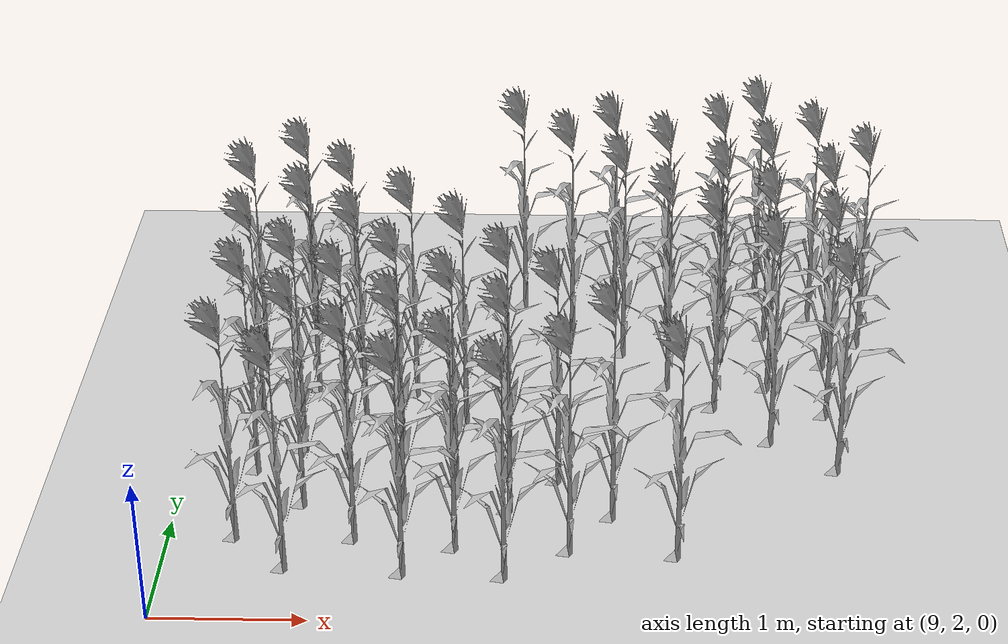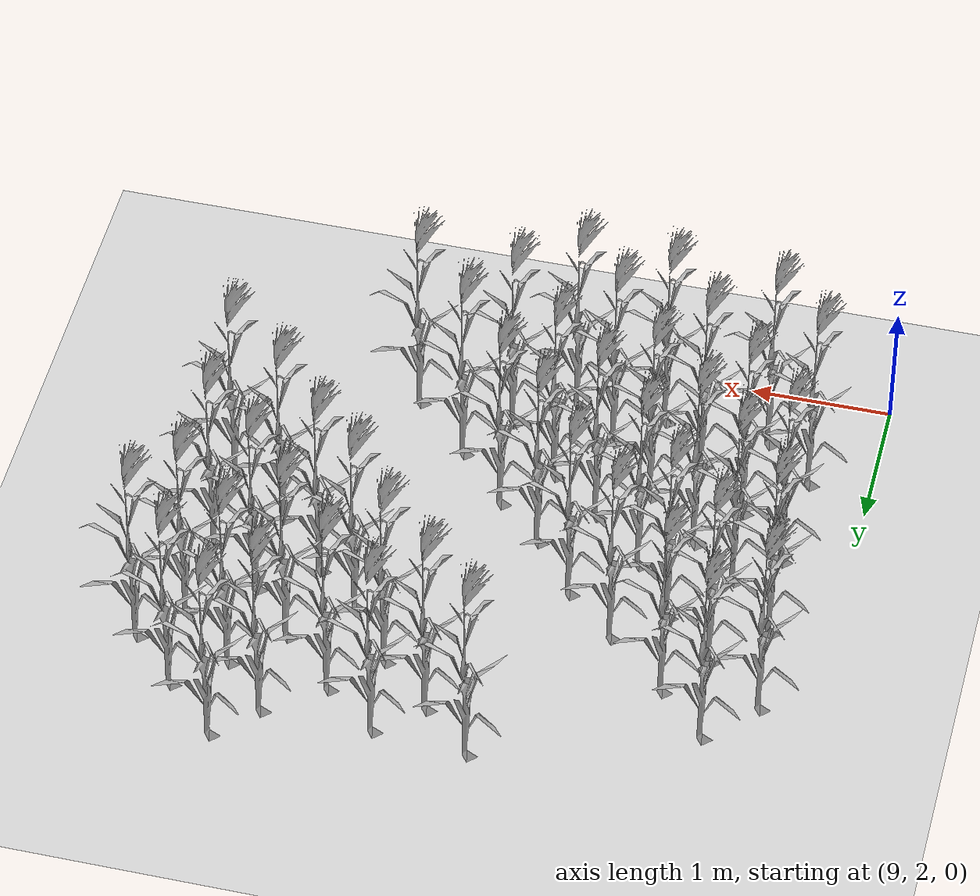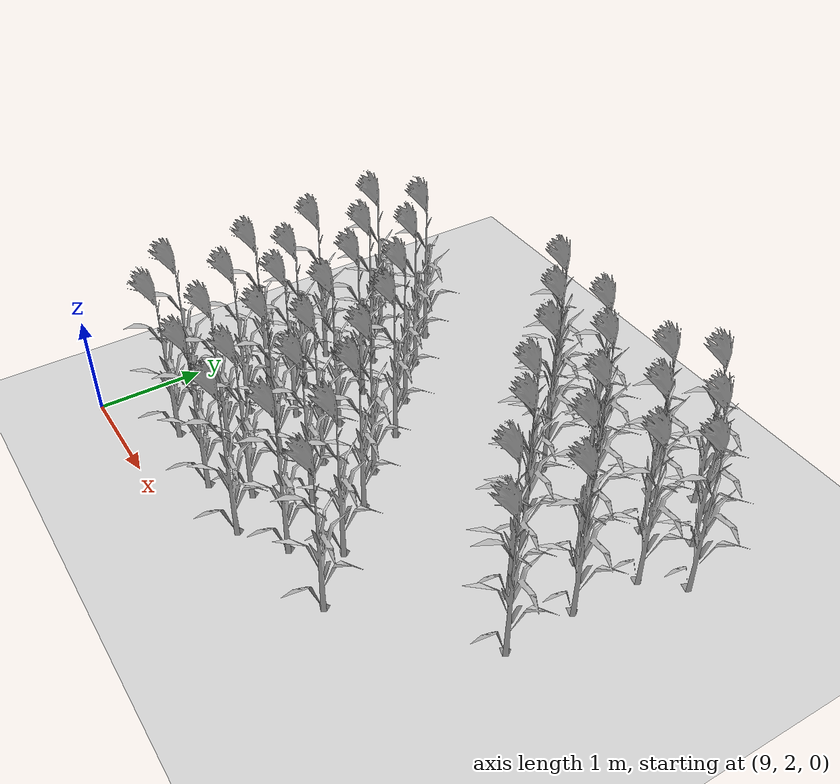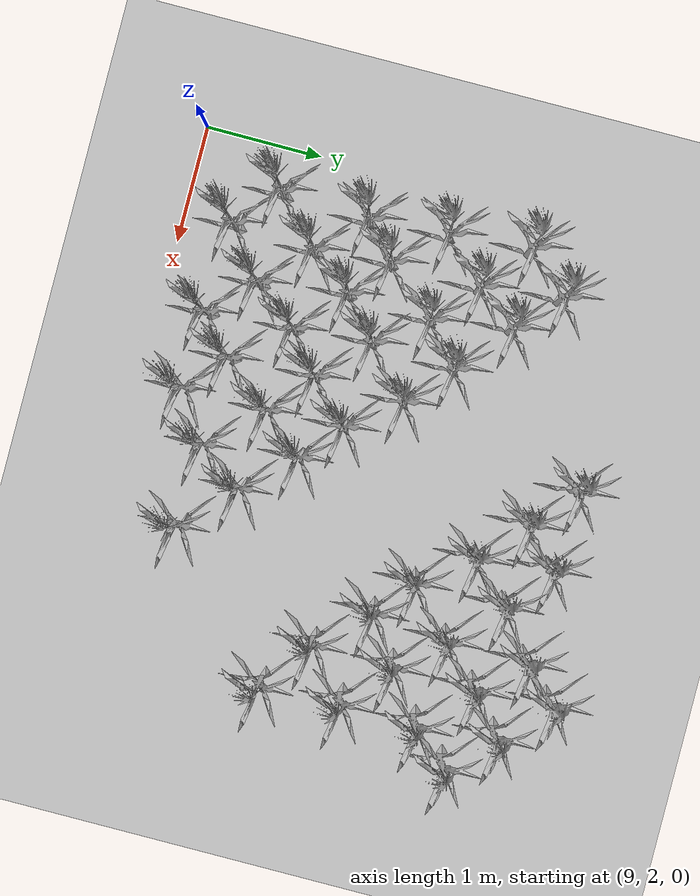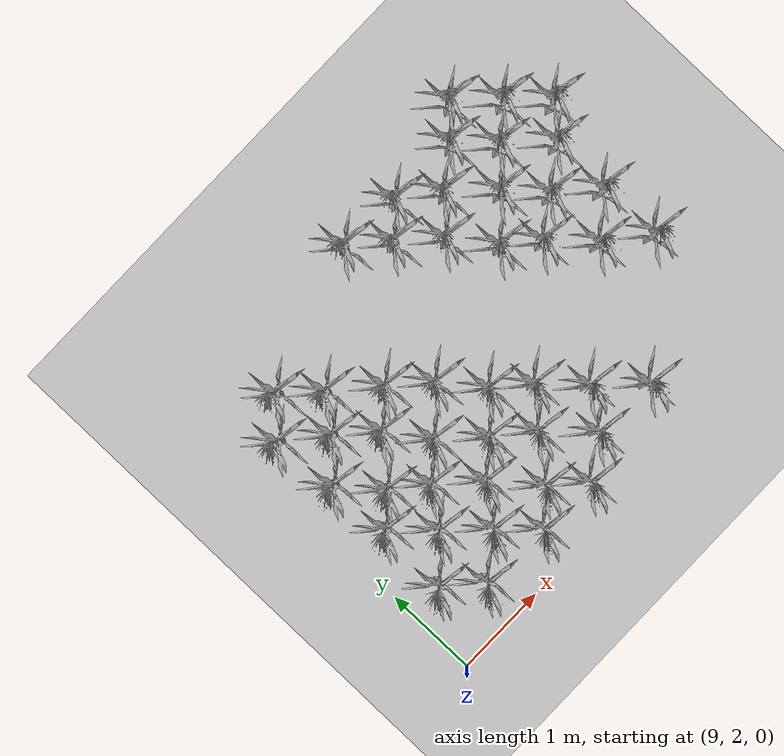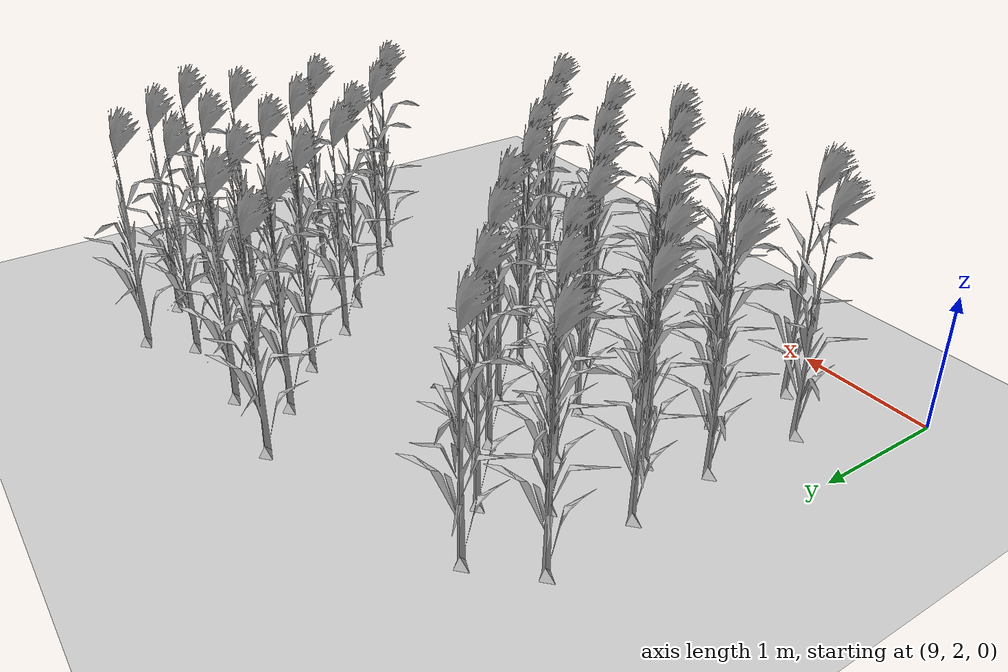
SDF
<sdf version="1.7">
 <world name="farmland_world">
  <model name="ground_plane">
   <static>1</static>
   <link name="link">
    <collision name="collision">
     <geometry><plane><normal>0 0 1</normal><size>40.0 40.0</size></plane></geometry>
     <surface><friction><ode><mu>100</mu><mu2>50</mu2></ode></friction></surface>
    </collision>
    <visual name="visual">
     <cast_shadows>0</cast_shadows>
     <geometry><plane><normal>0 0 1</normal><size>40.0 40.0</size></plane></geometry>
     <material>
      <script><uri>file://media/materials/scripts/gazebo.material</uri><name>Gazebo/Grey</name></script>
     </material>
    </visual>
   </link>
  </model>
  <model name="tree_3_389">
   <static>1</static>
   <link name="link">
    <collision name="collision">
     <geometry><mesh><uri>model://Corn_low_poly/corn.obj</uri><scale>1 1 1</scale></mesh></geometry>
     <surface><friction><ode><mu>100</mu><mu2>50</mu2></ode></friction></surface>
    </collision>
    <visual name="visual">
     <geometry><mesh><uri>model://Corn_low_poly/corn.obj</uri><scale>1 1 1</scale></mesh></geometry>
    </visual>
   </link>
   <pose>9.805813718808926 2.5064260391014463 0 0 0 0</pose>
  </model>
  <model name="tree_3_390">
   <static>1</static>
   <link name="link">
    <collision name="collision">
     <geometry><mesh><uri>model://Corn_low_poly/corn.obj</uri><scale>1 1 1</scale></mesh></geometry>
     <surface><friction><ode><mu>100</mu><mu2>50</mu2></ode></friction></surface>
    </collision>
    <visual name="visual">
     <geometry><mesh><uri>model://Corn_low_poly/corn.obj</uri><scale>1 1 1</scale></mesh></geometry>
    </visual>
   </link>
   <pose>9.453950628362769 2.8258959585008947 0 0 0 0</pose>
  </model>
  <model name="tree_3_433">
   <static>1</static>
   <link name="link">
    <collision name="collision">
     <geometry><mesh><uri>model://Corn_low_poly/corn.obj</uri><scale>1 1 1</scale></mesh></geometry>
     <surface><friction><ode><mu>100</mu><mu2>50</mu2></ode></friction></surface>
    </collision>
    <visual name="visual">
     <geometry><mesh><uri>model://Corn_low_poly/corn.obj</uri><scale>1 1 1</scale></mesh></geometry>
    </visual>
   </link>
   <pose>10.560601274652381 2.4673413335739474 0 0 0 0</pose>
  </model>
  <model name="tree_3_434">
   <static>1</static>
   <link name="link">
    <collision name="collision">
     <geometry><mesh><uri>model://Corn_low_poly/corn.obj</uri><scale>1 1 1</scale></mesh></geometry>
     <surface><friction><ode><mu>100</mu><mu2>50</mu2></ode></friction></surface>
    </collision>
    <visual name="visual">
     <geometry><mesh><uri>model://Corn_low_poly/corn.obj</uri><scale>1 1 1</scale></mesh></geometry>
    </visual>
   </link>
   <pose>10.222071041300351 2.8251462894061774 0 0 0 0</pose>
  </model>
  <model name="tree_3_435">
   <static>1</static>
   <link name="link">
    <collision name="collision">
     <geometry><mesh><uri>model://Corn_low_poly/corn.obj</uri><scale>1 1 1</scale></mesh></geometry>
     <surface><friction><ode><mu>100</mu><mu2>50</mu2></ode></friction></surface>
    </collision>
    <visual name="visual">
     <geometry><mesh><uri>model://Corn_low_poly/corn.obj</uri><scale>1 1 1</scale></mesh></geometry>
    </visual>
   </link>
   <pose>9.851525124851182 3.19813556850533 0 0 0 0</pose>
  </model>
  <model name="tree_3_436">
   <static>1</static>
   <link name="link">
    <collision name="collision">
     <geometry><mesh><uri>model://Corn_low_poly/corn.obj</uri><scale>1 1 1</scale></mesh></geometry>
     <surface><friction><ode><mu>100</mu><mu2>50</mu2></ode></friction></surface>
    </collision>
    <visual name="visual">
     <geometry><mesh><uri>model://Corn_low_poly/corn.obj</uri><scale>1 1 1</scale></mesh></geometry>
    </visual>
   </link>
   <pose>9.497411847582553 3.5766622341882863 0 0 0 0</pose>
  </model>
  <model name="tree_3_477">
   <static>1</static>
   <link name="link">
    <collision name="collision">
     <geometry><mesh><uri>model://Corn_low_poly/corn.obj</uri><scale>1 1 1</scale></mesh></geometry>
     <surface><friction><ode><mu>100</mu><mu2>50</mu2></ode></friction></surface>
    </collision>
    <visual name="visual">
     <geometry><mesh><uri>model://Corn_low_poly/corn.obj</uri><scale>1 1 1</scale></mesh></geometry>
    </visual>
   </link>
   <pose>11.20664361385101 2.4475673562555227 0 0 0 0</pose>
  </model>
  <model name="tree_3_478">
   <static>1</static>
   <link name="link">
    <collision name="collision">
     <geometry><mesh><uri>model://Corn_low_poly/corn.obj</uri><scale>1 1 1</scale></mesh></geometry>
     <surface><friction><ode><mu>100</mu><mu2>50</mu2></ode></friction></surface>
    </collision>
    <visual name="visual">
     <geometry><mesh><uri>model://Corn_low_poly/corn.obj</uri><scale>1 1 1</scale></mesh></geometry>
    </visual>
   </link>
   <pose>10.87679252991831 2.7448600254048108 0 0 0 0</pose>
  </model>
  <model name="tree_3_479">
   <static>1</static>
   <link name="link">
    <collision name="collision">
     <geometry><mesh><uri>model://Corn_low_poly/corn.obj</uri><scale>1 1 1</scale></mesh></geometry>
     <surface><friction><ode><mu>100</mu><mu2>50</mu2></ode></friction></surface>
    </collision>
    <visual name="visual">
     <geometry><mesh><uri>model://Corn_low_poly/corn.obj</uri><scale>1 1 1</scale></mesh></geometry>
    </visual>
   </link>
   <pose>10.513367713269707 3.1961060713245573 0 0 0 0</pose>
  </model>
  <model name="tree_3_480">
   <static>1</static>
   <link name="link">
    <collision name="collision">
     <geometry><mesh><uri>model://Corn_low_poly/corn.obj</uri><scale>1 1 1</scale></mesh></geometry>
     <surface><friction><ode><mu>100</mu><mu2>50</mu2></ode></friction></surface>
    </collision>
    <visual name="visual">
     <geometry><mesh><uri>model://Corn_low_poly/corn.obj</uri><scale>1 1 1</scale></mesh></geometry>
    </visual>
   </link>
   <pose>10.123123718220505 3.5599256513057895 0 0 0 0</pose>
  </model>
  <model name="tree_3_481">
   <static>1</static>
   <link name="link">
    <collision name="collision">
     <geometry><mesh><uri>model://Corn_low_poly/corn.obj</uri><scale>1 1 1</scale></mesh></geometry>
     <surface><friction><ode><mu>100</mu><mu2>50</mu2></ode></friction></surface>
    </collision>
    <visual name="visual">
     <geometry><mesh><uri>model://Corn_low_poly/corn.obj</uri><scale>1 1 1</scale></mesh></geometry>
    </visual>
   </link>
   <pose>9.78893356608472 3.8331152302083136 0 0 0 0</pose>
  </model>
  <model name="tree_3_482">
   <static>1</static>
   <link name="link">
    <collision name="collision">
     <geometry><mesh><uri>model://Corn_low_poly/corn.obj</uri><scale>1 1 1</scale></mesh></geometry>
     <surface><friction><ode><mu>100</mu><mu2>50</mu2></ode></friction></surface>
    </collision>
    <visual name="visual">
     <geometry><mesh><uri>model://Corn_low_poly/corn.obj</uri><scale>1 1 1</scale></mesh></geometry>
    </visual>
   </link>
   <pose>9.451856445934464 4.239384187881926 0 0 0 0</pose>
  </model>
  <model name="tree_3_522">
   <static>1</static>
   <link name="link">
    <collision name="collision">
     <geometry><mesh><uri>model://Corn_low_poly/corn.obj</uri><scale>1 1 1</scale></mesh></geometry>
     <surface><friction><ode><mu>100</mu><mu2>50</mu2></ode></friction></surface>
    </collision>
    <visual name="visual">
     <geometry><mesh><uri>model://Corn_low_poly/corn.obj</uri><scale>1 1 1</scale></mesh></geometry>
    </visual>
   </link>
   <pose>11.613955453756528 2.7249965433915375 0 0 0 0</pose>
  </model>
  <model name="tree_3_523">
   <static>1</static>
   <link name="link">
    <collision name="collision">
     <geometry><mesh><uri>model://Corn_low_poly/corn.obj</uri><scale>1 1 1</scale></mesh></geometry>
     <surface><friction><ode><mu>100</mu><mu2>50</mu2></ode></friction></surface>
    </collision>
    <visual name="visual">
     <geometry><mesh><uri>model://Corn_low_poly/corn.obj</uri><scale>1 1 1</scale></mesh></geometry>
    </visual>
   </link>
   <pose>11.211167910384708 3.1615482526948253 0 0 0 0</pose>
  </model>
  <model name="tree_3_524">
   <static>1</static>
   <link name="link">
    <collision name="collision">
     <geometry><mesh><uri>model://Corn_low_poly/corn.obj</uri><scale>1 1 1</scale></mesh></geometry>
     <surface><friction><ode><mu>100</mu><mu2>50</mu2></ode></friction></surface>
    </collision>
    <visual name="visual">
     <geometry><mesh><uri>model://Corn_low_poly/corn.obj</uri><scale>1 1 1</scale></mesh></geometry>
    </visual>
   </link>
   <pose>10.843138365916568 3.4654289229035276 0 0 0 0</pose>
  </model>
  <model name="tree_3_525">
   <static>1</static>
   <link name="link">
    <collision name="collision">
     <geometry><mesh><uri>model://Corn_low_poly/corn.obj</uri><scale>1 1 1</scale></mesh></geometry>
     <surface><friction><ode><mu>100</mu><mu2>50</mu2></ode></friction></surface>
    </collision>
    <visual name="visual">
     <geometry><mesh><uri>model://Corn_low_poly/corn.obj</uri><scale>1 1 1</scale></mesh></geometry>
    </visual>
   </link>
   <pose>10.456701354291248 3.842560267453306 0 0 0 0</pose>
  </model>
  <model name="tree_3_526">
   <static>1</static>
   <link name="link">
    <collision name="collision">
     <geometry><mesh><uri>model://Corn_low_poly/corn.obj</uri><scale>1 1 1</scale></mesh></geometry>
     <surface><friction><ode><mu>100</mu><mu2>50</mu2></ode></friction></surface>
    </collision>
    <visual name="visual">
     <geometry><mesh><uri>model://Corn_low_poly/corn.obj</uri><scale>1 1 1</scale></mesh></geometry>
    </visual>
   </link>
   <pose>10.163563903202622 4.262414613363496 0 0 0 0</pose>
  </model>
  <model name="tree_3_527">
   <static>1</static>
   <link name="link">
    <collision name="collision">
     <geometry><mesh><uri>model://Corn_low_poly/corn.obj</uri><scale>1 1 1</scale></mesh></geometry>
     <surface><friction><ode><mu>100</mu><mu2>50</mu2></ode></friction></surface>
    </collision>
    <visual name="visual">
     <geometry><mesh><uri>model://Corn_low_poly/corn.obj</uri><scale>1 1 1</scale></mesh></geometry>
    </visual>
   </link>
   <pose>9.799937324848678 4.589259523847224 0 0 0 0</pose>
  </model>
  <model name="tree_3_528">
   <static>1</static>
   <link name="link">
    <collision name="collision">
     <geometry><mesh><uri>model://Corn_low_poly/corn.obj</uri><scale>1 1 1</scale></mesh></geometry>
     <surface><friction><ode><mu>100</mu><mu2>50</mu2></ode></friction></surface>
    </collision>
    <visual name="visual">
     <geometry><mesh><uri>model://Corn_low_poly/corn.obj</uri><scale>1 1 1</scale></mesh></geometry>
    </visual>
   </link>
   <pose>9.386481406369303 4.922658376874325 0 0 0 0</pose>
  </model>
  <model name="tree_3_566">
   <static>1</static>
   <link name="link">
    <collision name="collision">
     <geometry><mesh><uri>model://Corn_low_poly/corn.obj</uri><scale>1 1 1</scale></mesh></geometry>
     <surface><friction><ode><mu>100</mu><mu2>50</mu2></ode></friction></surface>
    </collision>
    <visual name="visual">
     <geometry><mesh><uri>model://Corn_low_poly/corn.obj</uri><scale>1 1 1</scale></mesh></geometry>
    </visual>
   </link>
   <pose>12.30427239092553 2.686939559382189 0 0 0 0</pose>
  </model>
  <model name="tree_3_567">
   <static>1</static>
   <link name="link">
    <collision name="collision">
     <geometry><mesh><uri>model://Corn_low_poly/corn.obj</uri><scale>1 1 1</scale></mesh></geometry>
     <surface><friction><ode><mu>100</mu><mu2>50</mu2></ode></friction></surface>
    </collision>
    <visual name="visual">
     <geometry><mesh><uri>model://Corn_low_poly/corn.obj</uri><scale>1 1 1</scale></mesh></geometry>
    </visual>
   </link>
   <pose>11.886756718565346 3.098847159434103 0 0 0 0</pose>
  </model>
  <model name="tree_3_568">
   <static>1</static>
   <link name="link">
    <collision name="collision">
     <geometry><mesh><uri>model://Corn_low_poly/corn.obj</uri><scale>1 1 1</scale></mesh></geometry>
     <surface><friction><ode><mu>100</mu><mu2>50</mu2></ode></friction></surface>
    </collision>
    <visual name="visual">
     <geometry><mesh><uri>model://Corn_low_poly/corn.obj</uri><scale>1 1 1</scale></mesh></geometry>
    </visual>
   </link>
   <pose>11.519921626589333 3.5030396395466137 0 0 0 0</pose>
  </model>
  <model name="tree_3_569">
   <static>1</static>
   <link name="link">
    <collision name="collision">
     <geometry><mesh><uri>model://Corn_low_poly/corn.obj</uri><scale>1 1 1</scale></mesh></geometry>
     <surface><friction><ode><mu>100</mu><mu2>50</mu2></ode></friction></surface>
    </collision>
    <visual name="visual">
     <geometry><mesh><uri>model://Corn_low_poly/corn.obj</uri><scale>1 1 1</scale></mesh></geometry>
    </visual>
   </link>
   <pose>11.184640396752048 3.7972176269991094 0 0 0 0</pose>
  </model>
  <model name="tree_3_570">
   <static>1</static>
   <link name="link">
    <collision name="collision">
     <geometry><mesh><uri>model://Corn_low_poly/corn.obj</uri><scale>1 1 1</scale></mesh></geometry>
     <surface><friction><ode><mu>100</mu><mu2>50</mu2></ode></friction></surface>
    </collision>
    <visual name="visual">
     <geometry><mesh><uri>model://Corn_low_poly/corn.obj</uri><scale>1 1 1</scale></mesh></geometry>
    </visual>
   </link>
   <pose>10.86590303885345 4.213769880239518 0 0 0 0</pose>
  </model>
  <model name="tree_3_571">
   <static>1</static>
   <link name="link">
    <collision name="collision">
     <geometry><mesh><uri>model://Corn_low_poly/corn.obj</uri><scale>1 1 1</scale></mesh></geometry>
     <surface><friction><ode><mu>100</mu><mu2>50</mu2></ode></friction></surface>
    </collision>
    <visual name="visual">
     <geometry><mesh><uri>model://Corn_low_poly/corn.obj</uri><scale>1 1 1</scale></mesh></geometry>
    </visual>
   </link>
   <pose>10.500285105250843 4.542983378564115 0 0 0 0</pose>
  </model>
  <model name="tree_3_572">
   <static>1</static>
   <link name="link">
    <collision name="collision">
     <geometry><mesh><uri>model://Corn_low_poly/corn.obj</uri><scale>1 1 1</scale></mesh></geometry>
     <surface><friction><ode><mu>100</mu><mu2>50</mu2></ode></friction></surface>
    </collision>
    <visual name="visual">
     <geometry><mesh><uri>model://Corn_low_poly/corn.obj</uri><scale>1 1 1</scale></mesh></geometry>
    </visual>
   </link>
   <pose>10.06085327330592 4.928058651973455 0 0 0 0</pose>
  </model>
  <model name="tree_3_573">
   <static>1</static>
   <link name="link">
    <collision name="collision">
     <geometry><mesh><uri>model://Corn_low_poly/corn.obj</uri><scale>1 1 1</scale></mesh></geometry>
     <surface><friction><ode><mu>100</mu><mu2>50</mu2></ode></friction></surface>
    </collision>
    <visual name="visual">
     <geometry><mesh><uri>model://Corn_low_poly/corn.obj</uri><scale>1 1 1</scale></mesh></geometry>
    </visual>
   </link>
   <pose>9.716645473673383 5.264644887459833 0 0 0 0</pose>
  </model>
  <model name="tree_3_619">
   <static>1</static>
   <link name="link">
    <collision name="collision">
     <geometry><mesh><uri>model://Corn_low_poly/corn.obj</uri><scale>1 1 1</scale></mesh></geometry>
     <surface><friction><ode><mu>100</mu><mu2>50</mu2></ode></friction></surface>
    </collision>
    <visual name="visual">
     <geometry><mesh><uri>model://Corn_low_poly/corn.obj</uri><scale>1 1 1</scale></mesh></geometry>
    </visual>
   </link>
   <pose>13.39873460362715 3.662358530057532 0 0 0 0</pose>
  </model>
  <model name="tree_3_620">
   <static>1</static>
   <link name="link">
    <collision name="collision">
     <geometry><mesh><uri>model://Corn_low_poly/corn.obj</uri><scale>1 1 1</scale></mesh></geometry>
     <surface><friction><ode><mu>100</mu><mu2>50</mu2></ode></friction></surface>
    </collision>
    <visual name="visual">
     <geometry><mesh><uri>model://Corn_low_poly/corn.obj</uri><scale>1 1 1</scale></mesh></geometry>
    </visual>
   </link>
   <pose>12.963568624748838 3.9926426816649614 0 0 0 0</pose>
  </model>
  <model name="tree_3_621">
   <static>1</static>
   <link name="link">
    <collision name="collision">
     <geometry><mesh><uri>model://Corn_low_poly/corn.obj</uri><scale>1 1 1</scale></mesh></geometry>
     <surface><friction><ode><mu>100</mu><mu2>50</mu2></ode></friction></surface>
    </collision>
    <visual name="visual">
     <geometry><mesh><uri>model://Corn_low_poly/corn.obj</uri><scale>1 1 1</scale></mesh></geometry>
    </visual>
   </link>
   <pose>12.589749277930341 4.404620893347103 0 0 0 0</pose>
  </model>
  <model name="tree_3_622">
   <static>1</static>
   <link name="link">
    <collision name="collision">
     <geometry><mesh><uri>model://Corn_low_poly/corn.obj</uri><scale>1 1 1</scale></mesh></geometry>
     <surface><friction><ode><mu>100</mu><mu2>50</mu2></ode></friction></surface>
    </collision>
    <visual name="visual">
     <geometry><mesh><uri>model://Corn_low_poly/corn.obj</uri><scale>1 1 1</scale></mesh></geometry>
    </visual>
   </link>
   <pose>12.266401429187919 4.677752594289248 0 0 0 0</pose>
  </model>
  <model name="tree_3_623">
   <static>1</static>
   <link name="link">
    <collision name="collision">
     <geometry><mesh><uri>model://Corn_low_poly/corn.obj</uri><scale>1 1 1</scale></mesh></geometry>
     <surface><friction><ode><mu>100</mu><mu2>50</mu2></ode></friction></surface>
    </collision>
    <visual name="visual">
     <geometry><mesh><uri>model://Corn_low_poly/corn.obj</uri><scale>1 1 1</scale></mesh></geometry>
    </visual>
   </link>
   <pose>11.950550288991593 5.107843662277064 0 0 0 0</pose>
  </model>
  <model name="tree_3_624">
   <static>1</static>
   <link name="link">
    <collision name="collision">
     <geometry><mesh><uri>model://Corn_low_poly/corn.obj</uri><scale>1 1 1</scale></mesh></geometry>
     <surface><friction><ode><mu>100</mu><mu2>50</mu2></ode></friction></surface>
    </collision>
    <visual name="visual">
     <geometry><mesh><uri>model://Corn_low_poly/corn.obj</uri><scale>1 1 1</scale></mesh></geometry>
    </visual>
   </link>
   <pose>11.575888071398987 5.452281673436639 0 0 0 0</pose>
  </model>
  <model name="tree_3_625">
   <static>1</static>
   <link name="link">
    <collision name="collision">
     <geometry><mesh><uri>model://Corn_low_poly/corn.obj</uri><scale>1 1 1</scale></mesh></geometry>
     <surface><friction><ode><mu>100</mu><mu2>50</mu2></ode></friction></surface>
    </collision>
    <visual name="visual">
     <geometry><mesh><uri>model://Corn_low_poly/corn.obj</uri><scale>1 1 1</scale></mesh></geometry>
    </visual>
   </link>
   <pose>11.217710485046512 5.774337992003498 0 0 0 0</pose>
  </model>
  <model name="tree_3_664">
   <static>1</static>
   <link name="link">
    <collision name="collision">
     <geometry><mesh><uri>model://Corn_low_poly/corn.obj</uri><scale>1 1 1</scale></mesh></geometry>
     <surface><friction><ode><mu>100</mu><mu2>50</mu2></ode></friction></surface>
    </collision>
    <visual name="visual">
     <geometry><mesh><uri>model://Corn_low_poly/corn.obj</uri><scale>1 1 1</scale></mesh></geometry>
    </visual>
   </link>
   <pose>13.367125422831592 4.33199384814418 0 0 0 0</pose>
  </model>
  <model name="tree_3_665">
   <static>1</static>
   <link name="link">
    <collision name="collision">
     <geometry><mesh><uri>model://Corn_low_poly/corn.obj</uri><scale>1 1 1</scale></mesh></geometry>
     <surface><friction><ode><mu>100</mu><mu2>50</mu2></ode></friction></surface>
    </collision>
    <visual name="visual">
     <geometry><mesh><uri>model://Corn_low_poly/corn.obj</uri><scale>1 1 1</scale></mesh></geometry>
    </visual>
   </link>
   <pose>12.974923033191025 4.667867303379414 0 0 0 0</pose>
  </model>
  <model name="tree_3_666">
   <static>1</static>
   <link name="link">
    <collision name="collision">
     <geometry><mesh><uri>model://Corn_low_poly/corn.obj</uri><scale>1 1 1</scale></mesh></geometry>
     <surface><friction><ode><mu>100</mu><mu2>50</mu2></ode></friction></surface>
    </collision>
    <visual name="visual">
     <geometry><mesh><uri>model://Corn_low_poly/corn.obj</uri><scale>1 1 1</scale></mesh></geometry>
    </visual>
   </link>
   <pose>12.658228487347639 5.043039816075208 0 0 0 0</pose>
  </model>
  <model name="tree_3_667">
   <static>1</static>
   <link name="link">
    <collision name="collision">
     <geometry><mesh><uri>model://Corn_low_poly/corn.obj</uri><scale>1 1 1</scale></mesh></geometry>
     <surface><friction><ode><mu>100</mu><mu2>50</mu2></ode></friction></surface>
    </collision>
    <visual name="visual">
     <geometry><mesh><uri>model://Corn_low_poly/corn.obj</uri><scale>1 1 1</scale></mesh></geometry>
    </visual>
   </link>
   <pose>12.266412670120998 5.433709804584222 0 0 0 0</pose>
  </model>
  <model name="tree_3_668">
   <static>1</static>
   <link name="link">
    <collision name="collision">
     <geometry><mesh><uri>model://Corn_low_poly/corn.obj</uri><scale>1 1 1</scale></mesh></geometry>
     <surface><friction><ode><mu>100</mu><mu2>50</mu2></ode></friction></surface>
    </collision>
    <visual name="visual">
     <geometry><mesh><uri>model://Corn_low_poly/corn.obj</uri><scale>1 1 1</scale></mesh></geometry>
    </visual>
   </link>
   <pose>11.885408822359773 5.722845468078357 0 0 0 0</pose>
  </model>
  <model name="tree_3_708">
   <static>1</static>
   <link name="link">
    <collision name="collision">
     <geometry><mesh><uri>model://Corn_low_poly/corn.obj</uri><scale>1 1 1</scale></mesh></geometry>
     <surface><friction><ode><mu>100</mu><mu2>50</mu2></ode></friction></surface>
    </collision>
    <visual name="visual">
     <geometry><mesh><uri>model://Corn_low_poly/corn.obj</uri><scale>1 1 1</scale></mesh></geometry>
    </visual>
   </link>
   <pose>13.390193951346104 4.974204510108656 0 0 0 0</pose>
  </model>
  <model name="tree_3_709">
   <static>1</static>
   <link name="link">
    <collision name="collision">
     <geometry><mesh><uri>model://Corn_low_poly/corn.obj</uri><scale>1 1 1</scale></mesh></geometry>
     <surface><friction><ode><mu>100</mu><mu2>50</mu2></ode></friction></surface>
    </collision>
    <visual name="visual">
     <geometry><mesh><uri>model://Corn_low_poly/corn.obj</uri><scale>1 1 1</scale></mesh></geometry>
    </visual>
   </link>
   <pose>12.984844179035772 5.360685848746911 0 0 0 0</pose>
  </model>
  <model name="tree_3_710">
   <static>1</static>
   <link name="link">
    <collision name="collision">
     <geometry><mesh><uri>model://Corn_low_poly/corn.obj</uri><scale>1 1 1</scale></mesh></geometry>
     <surface><friction><ode><mu>100</mu><mu2>50</mu2></ode></friction></surface>
    </collision>
    <visual name="visual">
     <geometry><mesh><uri>model://Corn_low_poly/corn.obj</uri><scale>1 1 1</scale></mesh></geometry>
    </visual>
   </link>
   <pose>12.6633162122837 5.722059486430784 0 0 0 0</pose>
  </model>
  <model name="tree_3_750">
   <static>1</static>
   <link name="link">
    <collision name="collision">
     <geometry><mesh><uri>model://Corn_low_poly/corn.obj</uri><scale>1 1 1</scale></mesh></geometry>
     <surface><friction><ode><mu>100</mu><mu2>50</mu2></ode></friction></surface>
    </collision>
    <visual name="visual">
     <geometry><mesh><uri>model://Corn_low_poly/corn.obj</uri><scale>1 1 1</scale></mesh></geometry>
    </visual>
   </link>
   <pose>13.660423598030523 5.274790557568232 0 0 0 0</pose>
  </model>
  <model name="tree_3_751">
   <static>1</static>
   <link name="link">
    <collision name="collision">
     <geometry><mesh><uri>model://Corn_low_poly/corn.obj</uri><scale>1 1 1</scale></mesh></geometry>
     <surface><friction><ode><mu>100</mu><mu2>50</mu2></ode></friction></surface>
    </collision>
    <visual name="visual">
     <geometry><mesh><uri>model://Corn_low_poly/corn.obj</uri><scale>1 1 1</scale></mesh></geometry>
    </visual>
   </link>
   <pose>13.321552827371743 5.635048589252438 0 0 0 0</pose>
  </model>
  <model name="tree_3_752">
   <static>1</static>
   <link name="link">
    <collision name="collision">
     <geometry><mesh><uri>model://Corn_low_poly/corn.obj</uri><scale>1 1 1</scale></mesh></geometry>
     <surface><friction><ode><mu>100</mu><mu2>50</mu2></ode></friction></surface>
    </collision>
    <visual name="visual">
     <geometry><mesh><uri>model://Corn_low_poly/corn.obj</uri><scale>1 1 1</scale></mesh></geometry>
    </visual>
   </link>
   <pose>12.945801949929187 6.001830184269144 0 0 0 0</pose>
  </model>
 </world>
</sdf>
